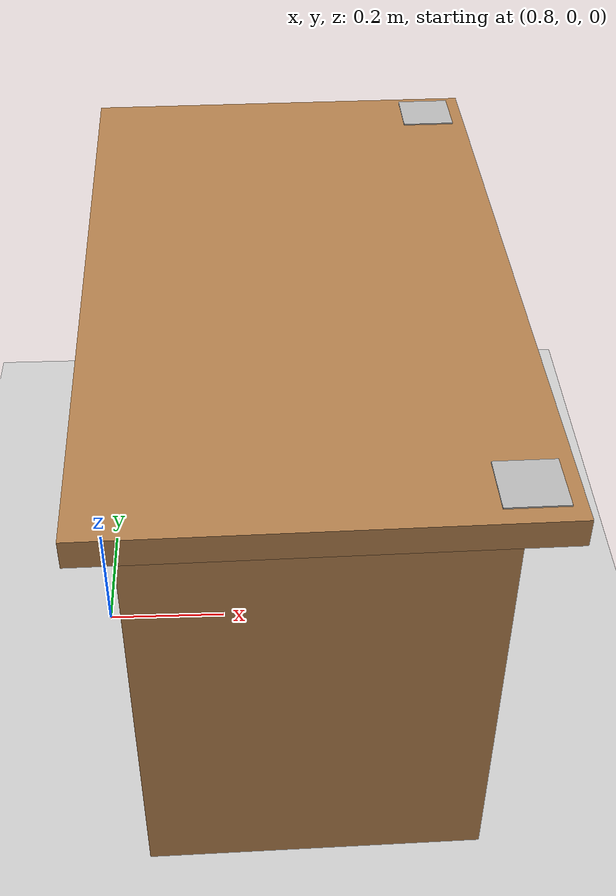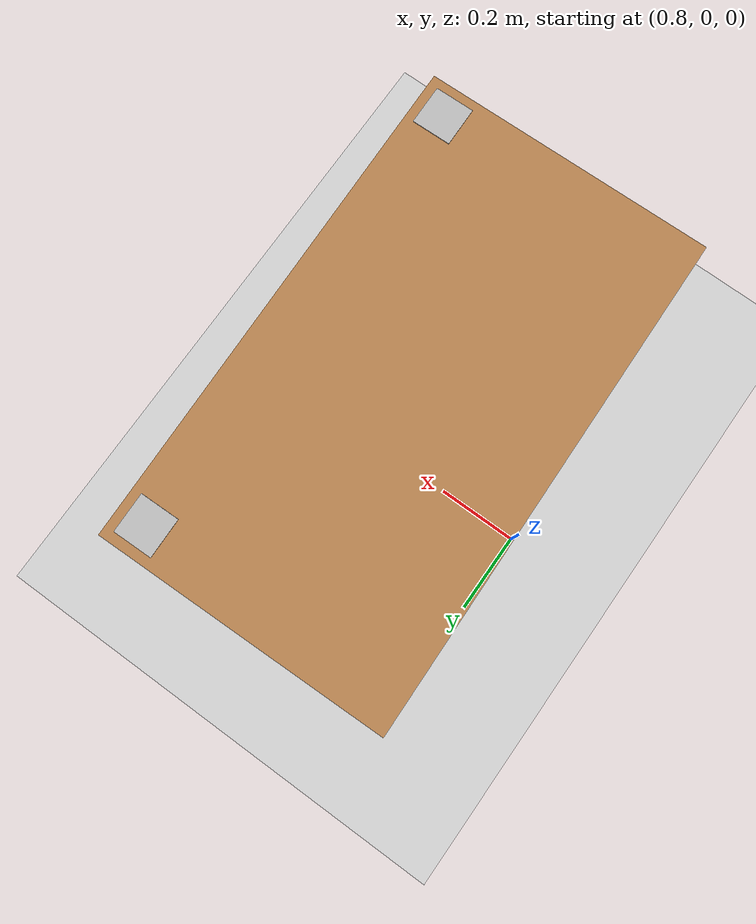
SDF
<sdf version="1.6">
 <world name="default">
  <model name="ground_plane">
   <static>1</static>
   <link name="link">
    <collision name="collision">
     <geometry><plane><normal>0 0 1</normal><size>100 100</size></plane></geometry>
     <surface>
      <contact><collide_bitmask>65535</collide_bitmask></contact>
      <friction><ode><mu>100</mu><mu2>50</mu2></ode></friction>
     </surface>
    </collision>
    <visual name="visual">
     <cast_shadows>0</cast_shadows>
     <geometry><plane><normal>0 0 1</normal><size>100 100</size></plane></geometry>
     <material>
      <script><uri>file://media/materials/scripts/gazebo.material</uri><name>Gazebo/Grey</name></script>
     </material>
    </visual>
   </link>
  </model>
  <model name="table_b">
   <static>1</static>
   <link name="link">
    <visual name="surface">
     <pose>0 0 0.73 0 -0 0</pose>
     <geometry><box><size>1.04 0.6 0.04</size></box></geometry>
     <material>
      <script><uri>file://media/materials/scripts/gazebo.material</uri><name>Gazebo/Wood</name></script>
     </material>
    </visual>
    <visual name="leg_left">
     <pose>0.39 0 0.355 0 -0 0</pose>
     <geometry><box><size>0.1 0.5 0.71</size></box></geometry>
     <material>
      <script><uri>file://media/materials/scripts/gazebo.material</uri><name>Gazebo/Wood</name></script>
     </material>
    </visual>
    <visual name="leg_right">
     <pose>-0.39 0 0.355 0 -0 0</pose>
     <geometry><box><size>0.1 0.5 0.71</size></box></geometry>
     <material>
      <script><uri>file://media/materials/scripts/gazebo.material</uri><name>Gazebo/Wood</name></script>
     </material>
    </visual>
    <collision name="surface">
     <pose>0 0 0.73 0 -0 0</pose>
     <geometry><box><size>1.04 0.6 0.04</size></box></geometry>
    </collision>
    <collision name="leg_left">
     <pose>0.39 0 0.355 0 -0 0</pose>
     <geometry><box><size>0.1 0.5 0.71</size></box></geometry>
    </collision>
    <collision name="leg_right">
     <pose>-0.39 0 0.355 0 -0 0</pose>
     <geometry><box><size>0.1 0.5 0.71</size></box></geometry>
    </collision>
    <visual name="marker_8">
     <pose>0.46 0.24 0.755 0 -0 0</pose>
     <geometry><mesh><uri>model://ar_marker_8cm_8/meshes/ar_marker_8cm.dae</uri></mesh></geometry>
    </visual>
    <visual name="marker_9">
     <pose>-0.46 0.24 0.755 0 -0 0</pose>
     <geometry><mesh><uri>model://ar_marker_8cm_9/meshes/ar_marker_8cm.dae</uri></mesh></geometry>
    </visual>
   </link>
   <pose>1.13112 -0.043403 0 0 0 -1.5506</pose>
  </model>
 </world>
</sdf>
